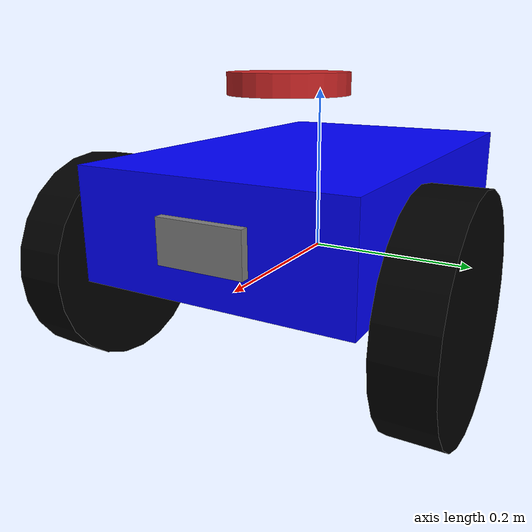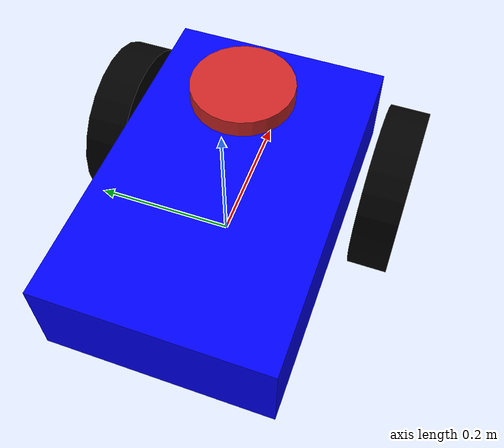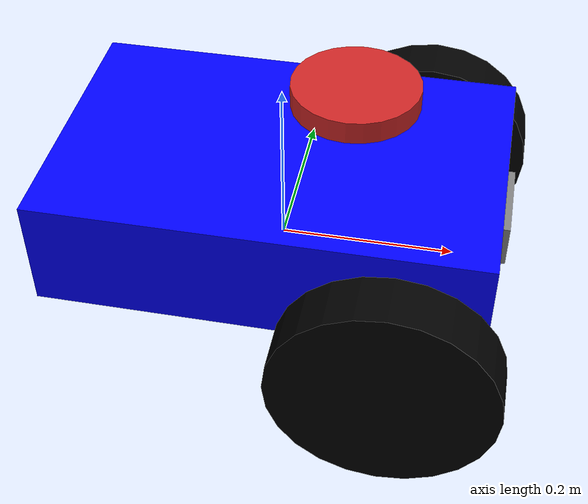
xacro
<?xml version="1.0"?>
<robot xmlns:xacro="http://www.ros.org/wiki/xacro" name="diffdrive_robot">

  <xacro:arg name="prefix" default="" />

  <xacro:include filename="$(find tondo_description)/urdf/tondo_urdf.urdf.xacro" />

  <xacro:include filename="$(find odrive_demo_description)/urdf/odrive.ros2_control.xacro" />

  <xacro:odrive_ros2_control
    name="ODriveDiffBot"
    joint0_name="$(arg prefix)base_left_wheel_joint"
    joint1_name="$(arg prefix)base_right_wheel_joint" />

</robot>

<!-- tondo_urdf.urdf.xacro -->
<robot name="tondo" xmlns:xacro="http://www.ros.org/wiki/xacro">

    <!-- included what was originally here-->
    <xacro:include filename="common_properties.xacro"/>
    <xacro:include filename="mobile_base.xacro"/>
    <xacro:include filename="camera.xacro"/>
    <xacro:include filename="lidar.xacro"/>

</robot>

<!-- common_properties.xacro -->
<robot  xmlns:xacro="http://www.ros.org/wiki/xacro">

    <material name="blue">
        <color rgba="0 0 1 1"/>
    </material>

    <material name="grey">
        <color rgba="0.5 0.5 0.5 1"/>
    </material>

    <material name="black">
        <color rgba="0 0 0 1"/>
    </material>

    <xacro:macro name="box_inertia" params="m l w h xyz rpy">
        <inertial>
            <origin xyz="${xyz}" rpy="${rpy}" />
            <mass value="${m}" />
            <inertia ixx="${((m/12) * (h*h + l*l))}"  ixy="0" ixz="0"
                     iyy="${((m/12) * (w*w + l*l))}"  iyz="0"
                     izz="${((m/12) * (w*w + h*h))}" />
        </inertial>
    </xacro:macro>

    <xacro:macro name="sphere_inertia" params="m r xyz rpy">
        <inertial>
            <origin xyz="${xyz}" rpy="${rpy}"/>
            <mass value="${m}"/>
            <inertia ixx="${(2/5) * (m*r*r)}" ixy="0" ixz="0"
                     iyy="${(2/5) * (m*r*r)}" iyz="0"
                     izz="${(2/5) * (m*r*r)}" />

        </inertial>
    </xacro:macro>

    <xacro:macro name="cylinder_inertia" params="m r h xyz rpy">
        <inertial>
            <origin xyz="${xyz}" rpy="${rpy}"/>
            <mass value="${m}"/>
            <inertia ixx="${(m/12) * (3*r*r + h*h)}" ixy="0" ixz="0"
                     iyy="${(m/12) * (3*r*r + h*h)}" iyz="0"
                     izz="${(m/2)*r*r}" />

        </inertial>
    </xacro:macro>

</robot>

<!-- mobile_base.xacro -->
<robot  xmlns:xacro="http://www.ros.org/wiki/xacro">
<!--no name overwrite, is reserved for the main file-->

    <xacro:property name="base_length" value="0.5"/>
    <xacro:property name="base_width" value="0.32"/>
    <xacro:property name="base_height" value="0.13"/>

    <xacro:property name="wheel_radius" value="0.125"/>
    <xacro:property name="wheel_width" value="0.06"/>

    <link name="base_footprint"/>

    <link name="base_link">
        <visual>
            <geometry>
                <box size="${base_length} ${base_width} ${base_height}" />
            </geometry>

            <origin xyz="0 0 ${base_height/2}" rpy="0 0 0"/>
            <material name="blue" />
        </visual>

        <collision>
            <geometry>
                <box size="${base_length} ${base_width} ${base_height}" />
            </geometry>
            <origin xyz="0 0 0.1" rpy="0 0 0"/>
        </collision>

        <xacro:box_inertia m="3.0" l="${2*base_length}" w="${2*base_width}" h="${2*base_height}"
                           xyz="0 0 0.1" rpy="0 0 0"/>

    </link>

    <link name="right_wheel_link">
        <visual>
            <geometry>
                <cylinder radius="${wheel_radius}" length="${wheel_width}"/>
            </geometry>

            <origin xyz="0 0 0" rpy="${pi/2.0} 0 0"/>
            <material name="black" />
        </visual>

        <collision>
            <geometry>
                <cylinder radius="${wheel_radius}" length="${wheel_width}"/>
            </geometry>
            <origin xyz="0 0 0" rpy="${pi/2.0} 0 0"/>
        </collision>

        <xacro:cylinder_inertia m="1" r="${2*wheel_radius}" h="${2*wheel_width}"
                                xyz="0 0 0" rpy="${pi/2.0} 0 0"/>

    </link>

    <link name="left_wheel_link">
        <visual>
            <geometry>
                <cylinder radius="${wheel_radius}" length="${wheel_width}"/>
            </geometry>

            <origin xyz="0 0 0" rpy="${pi/2.0} 0 0"/>
            <material name="black" />
        </visual>

        <collision>
            <geometry>
                <cylinder radius="${wheel_radius}" length="${wheel_width}"/>
            </geometry>
            <origin xyz="0 0 0" rpy="${pi/2.0} 0 0"/>
        </collision>

        <xacro:cylinder_inertia m="1" r="${2*wheel_radius}" h="${2*wheel_width}"
                                xyz="0 0 0" rpy="${pi/2.0} 0 0"/>
    </link>

    <link name="rear_caster">
        <visual>
            <geometry>
                <sphere radius="${wheel_radius/2}"/>
            </geometry>

            <origin xyz="0 0 0" rpy="0 0 0"/>
            <material name="grey" />
        </visual>

        <collision>
            <geometry>
                <sphere radius="${wheel_radius/2}"/>
            </geometry>
            <origin xyz="0 0 0" rpy="0 0 0"/>
        </collision>

        <xacro:sphere_inertia m="0.5" r="${2*wheel_radius/2}"  xyz="0 0 0" rpy="0 0 0"/>
    </link>

    <joint name="base_joint" type="fixed">
        <parent link="base_link" />
        <child link="base_footprint" />
        <origin xyz="0 0 -0.125" rpy="0 0 0" />
        <axis xyz="0 0 0" />
    </joint>

    <joint name="base_left_wheel_joint" type="continuous">
        <parent link="base_link" />
        <child link="left_wheel_link" />
        <origin xyz="0.15 +0.21 0" rpy="0 0 0" />
        <axis xyz="0 1 0" />
    </joint>

    <joint name="base_right_wheel_joint" type="continuous">
        <parent link="base_link" />
        <child link="right_wheel_link" />
        <origin xyz="0.15 -0.21 0" rpy="0 0 0" />
        <axis xyz="0 1 0" />
    </joint>

    <joint name="base_rear_caster_joint" type="fixed">
        <parent link="base_link" />
        <child link="rear_caster" />
        <origin xyz="-0.15 0 -${wheel_radius/2}" rpy="0 0 0" />
        <axis xyz="0 0 0" />
    </joint>

</robot>

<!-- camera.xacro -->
<robot  xmlns:xacro="http://www.ros.org/wiki/xacro">

    <xacro:property name="camera_length" value="0.01"/>
    <xacro:property name="camera_width" value="0.1"/>
    <xacro:property name="camera_height" value="0.05"/>
    <xacro:property name="camera_mass" value="0.1"/>

    <link name="camera_link">
        <visual>
            <geometry>
                <box size="${camera_length} ${camera_width} ${camera_height}"/>
            </geometry>
            <material name="grey"/>
        </visual>

        <collision>
            <geometry>
                <box size="${camera_length} ${camera_width} ${camera_height}"/>
            </geometry>
        </collision>

        <xacro:box_inertia m="${camera_mass}" l="${camera_length}" w="${camera_width}" h="${camera_height}"
                           xyz="0 0 0" rpy="0 0 0"/>

    </link>

    <joint name="base_camera_joint" type="fixed">
            <parent link="base_link"/>
            <child link="camera_link"/>
            <origin xyz="${(base_length+camera_length)/2}  0 ${base_height/2}" rpy="0 0 0"/>
    </joint>

    <link name="camera_link_optical">
    </link>

    <joint name="camera_optical_joint" type="fixed">
        <!-- these values have to be these values otherwise the gazebo camera
            image won't be aligned properly with the frame it is supposedly
            originating from -->
        <origin xyz="0 0 0" rpy="${-pi/2} 0 ${-pi/2}"/>
        <parent link="camera_link"/>
        <child link="camera_link_optical"/>
    </joint>

    <gazebo reference="camera_link">
        <material>Gazebo/Red</material>
        <sensor name="camera_sensor" type="camera">
            <pose>0 0 0 0 0 0 </pose>
            <visualize>true</visualize>
            <update_rate>30</update_rate>

            <plugin name="camera_controller" filename="libgazebo_ros_camera.so">
                <frame_name>camera_link_optical</frame_name>
            </plugin>

        </sensor>
    </gazebo>
</robot>

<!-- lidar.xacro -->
<robot  xmlns:xacro="http://www.ros.org/wiki/xacro"  >

    <xacro:property name="laser_box_length" value="0.5"/>
    <xacro:property name="laser_box_width" value="0.32"/>
    <xacro:property name="laser_box_height" value="0.2"/>

    <xacro:property name="laser_radius" value="0.07"/>
    <xacro:property name="laser_width" value="0.025"/>
    <xacro:property name="laser_mass" value="0.1"/>

    <link name="laser_link">
        <visual>
            <geometry>
                <cylinder radius="${laser_radius}" length="${laser_width}"/>
            </geometry>
            <material name="red"/>
        </visual>
        <visual>
            <origin xyz="0 0 0"/>
            <geometry>
                <cylinder radius="${laser_radius}" length="${laser_width}"/>
            </geometry>
            <material name="red"/>
        </visual>
        <collision>
            <geometry>
                <cylinder radius="${laser_radius}" length="${laser_width}"/>
            </geometry>
        </collision>
        <xacro:cylinder_inertia m="${laser_mass}" r="${laser_radius}" h="${laser_width}"
                                xyz="0 0 0" rpy="0 0 0"/>
    </link>

    <joint name="base_laser_joint" type="fixed">
        <parent link="base_link"/>
        <child link="laser_link"/>
        <origin xyz="0.08 0 0.21" rpy="0 0 0"/>
    </joint>

</robot>
